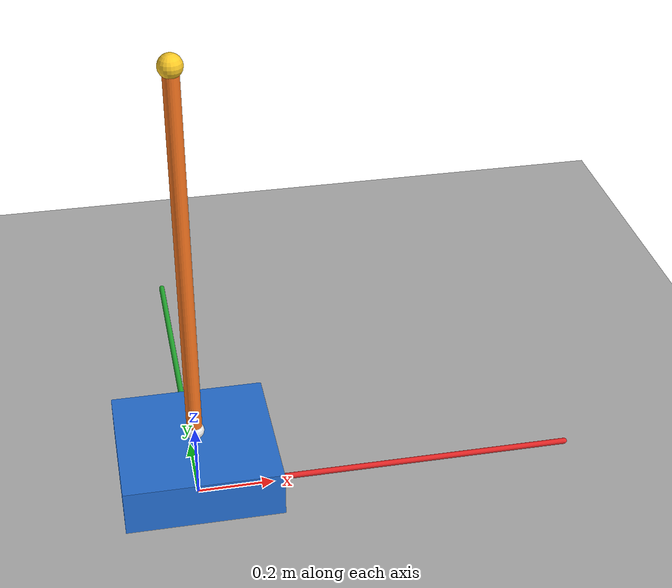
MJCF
<?xml version="1.0" encoding="UTF-8"?>

<!-- mujoco 是 MJCF 根元素；model 是模型名称，方便在查看器中识别。 -->
<mujoco model="xy_cart_two_tilt_pole">
  <!--
    compiler：XML 编译设置。
    angle="radian"：XML 中按此设置解释的角度使用弧度。
    inertiafromgeom="true"：根据各 geom 的形状、尺寸、质量自动计算刚体质心和惯量。
    小车和摆杆都不需要另外手写 inertial。
  -->
  <compiler angle="radian" inertiafromgeom="true"/>

  <option timestep="0.001" gravity="0 0 -9.81" integrator="implicitfast"/>

  <!-- default：同类元素继承的公共设置，可由具体元素覆盖。 -->
  <default>
    <!--
      joint：所有关节的默认参数。
      damping="0"：无粘性阻尼；frictionloss="0"：无干摩擦。
      armature="0"：不增加电机转子等折算到关节上的额外惯量。
    -->
    <joint damping="0" frictionloss="0" armature="0"/>
    <!--
      geom：几何体的公共参数。
      contype="0"、conaffinity="0"：关闭所有接触碰撞，关节约束和重力仍然生效。
      rgba：红、绿、蓝、透明度，均取 0 到 1；最后一项为 1 表示不透明。
    -->
    <geom contype="0" conaffinity="0" rgba="0.7 0.7 0.7 1"/>
  </default>

  <!-- asset：可以供几何体引用的纹理、材质等显示资源，不改变物理参数。 -->
  <asset>
    <!--
      texture：地面棋盘纹理，用于观察小车在两个水平方向的位移。
      name：纹理名称；type="2d"：二维纹理；builtin="checker"：生成棋盘格。
      width、height：生成的纹理宽、高，单位像素。
      rgb1、rgb2：两种棋盘格颜色，每项是红、绿、蓝。
    -->
    <texture name="floor_texture" type="2d" builtin="checker"
             width="512" height="512" rgb1="0.86 0.88 0.9" rgb2="0.65 0.69 0.73"/>
    <!--
      material：给地面使用的材质。
      name：材质名称；texture：引用上面的纹理。
      texrepeat="4 4"：纹理在两个纹理坐标方向各重复 4 次。
      texuniform="true"：使用按空间尺寸统一缩放的纹理映射。
    -->
    <material name="floor_material" texture="floor_texture"
              texrepeat="4 4" texuniform="true"/>
  </asset>

  <!--
    statistic：提供默认观察中心和显示尺度，不改变动力学。
    center="0 0 0.6"：默认观察中心；extent="3"：显示的参考尺度，单位 m。
  -->
  <statistic center="0 0 0.6" extent="3"/>

  <!-- worldbody：世界坐标系；直接包含的几何体和相机固定在世界中。 -->
  <worldbody>
    <!--
      light：灯光，仅影响显示。
      name：灯光名称；pos：世界位置；dir：光线传播方向。
      directional="true"：方向光，光线相互平行。
    -->
    <light name="main_light" pos="1 -3 4" dir="-1 3 -4" directional="true"/>

    <camera name="overview" pos="3 -4 2.5"
            xyaxes="0.8 0.6 0 -0.228 0.304 1" fovy="45"/>
    <!--
      name="front"：正面相机；pos 位于 -Y 一侧。
      xyaxes：画面向右为世界 +X，向上为 +Z；fovy 为竖直视场角。
    -->
    <camera name="front" pos="0 -4 0.65" xyaxes="1 0 0 0 0 1" fovy="45"/>
    <!--
      name="side"：侧面相机；pos 位于 +X 一侧。
      xyaxes：画面向右为世界 +Y，向上为 +Z；fovy 为竖直视场角。
    -->
    <camera name="side" pos="4 0 0.65" xyaxes="0 1 0 0 0 1" fovy="45"/>
    <!--
      name="top"：俯视相机；pos 位于 +Z 一侧。
      xyaxes：画面向右为世界 +X，向上为 +Y；fovy 为竖直视场角。
    -->
    <camera name="top" pos="0 0 4" xyaxes="1 0 0 0 1 0" fovy="45"/>

    <!--
      geom：地面几何体；name：名称；type="plane"：平面。
      pos：地面位于世界 z=0；size：可视化 X/Y 半尺寸及网格间距，不是厚度。
      material：引用棋盘材质；碰撞已由 default 关闭。
      地面没有物理边界，小车的 XY 位移不受地面可视化尺寸限制。
    -->
    <geom name="ground" type="plane" pos="0 0 0" size="4 4 0.25"
          material="floor_material"/>
    <!--
      X 轴标记：name 为名称；type="capsule" 为胶囊形状。
      fromto：世界坐标中两个端点，指定标记的位置、长度和方向。
      size="0.008"：标记半径 0.008 m；rgba：红色，表示世界 +X。
      这是固定显示元素，不是导轨，不限制小车运动。
    -->
    <geom name="x_axis_marker" type="capsule" fromto="0 0 0.012 1 0 0.012"
          size="0.008" rgba="0.9 0.15 0.15 1"/>
    <!-- Y 轴标记：属性同上；fromto 沿 +Y；rgba 为绿色。 -->
    <geom name="y_axis_marker" type="capsule" fromto="0 0 0.012 0 1 0.012"
          size="0.008" rgba="0.15 0.7 0.2 1"/>

    <!--
      body：小车刚体；name="cart" 为名称。
      pos：两个平移关节位置为零时，小车坐标系原点位于 (0, 0, 0.12) m。
      以下两个 slide 关节让小车能在 XY 平面内平移。
      小车没有 Z 平移和转动关节，因此高度固定，也不会偏航、俯仰或侧倾。
    -->
    <body name="cart" pos="0 0 0.12">
      <!--
        name="cart_x"：X 方向关节名称，供执行器和传感器引用。
        type="slide"：一个平移自由度；axis="1 0 0"：沿小车局部 +X。
        小车姿态固定，因此局部轴与世界轴一致。
        limited="false"：无行程限制；该关节位置存入 qpos[0]，单位 m。
      -->
      <joint name="cart_x" type="slide" axis="1 0 0" limited="false"/>
      <!--
        name="cart_y"：Y 方向关节名称；type="slide"：一个平移自由度。
        axis="0 1 0"：沿 +Y；limited="false"：无行程限制。
        关节按声明顺序存储，该关节位置是 qpos[1]，单位 m。
        两个 slide 在同一个刚体上，不会额外引入中间滑台的质量。
      -->
      <joint name="cart_y" type="slide" axis="0 1 0" limited="false"/>

      <!--
        小车外形和惯性来源。
        name：名称；type="box"：长方体；size：X/Y/Z 三个半尺寸。
        总尺寸为 0.40 x 0.40 x 0.12 m，未写 pos，默认位于小车原点。
        mass="1.0"：小车自身质量 1 kg，不包含子刚体摆杆。
        rgba：蓝色、不透明。
      -->
      <geom name="cart_geom" type="box" size="0.20 0.20 0.06" mass="1.0"
            rgba="0.15 0.45 0.85 1"/>
      <!--
        site：显示双铰交点的标记，不是有质量的刚体，也不会增加惯量。
        name：名称；type="sphere"：球形；pos：相对小车原点的位置。
        size：球的半径；rgba：浅色、不透明。
        该位置与下面 pole 的原点重合，即两个倾倒关节的共同中心。
      -->
      <site name="pivot_marker" type="sphere" pos="0 0 0.08" size="0.025"
            rgba="0.95 0.95 0.95 1"/>

      <!--
        pole：摆杆刚体，作为 cart 的子刚体随小车一起平移。
        name：刚体名称；pos：相对于小车坐标系，双铰在中心上方 0.08 m。
        初始双铰中心的世界高度为 0.12 + 0.08 = 0.20 m。
      -->
      <body name="pole" pos="0 0 0.08">
        <joint name="pole_tilt_x" type="hinge" pos="0 0 0"
               axis="0 1 0" limited="false"/>
        <joint name="pole_tilt_y" type="hinge" pos="0 0 0"
               axis="-1 0 0" limited="false"/>
        <geom name="pole_geom" type="cylinder" pos="0 0 0.5"
              size="0.02 0.5" mass="0.1" rgba="0.95 0.45 0.12 1"/>
        <!--
          杆顶标记，用于观察杆顶在三维空间中的位置。
          site 不增加质量或惯量；name、type、pos、size、rgba 含义同前。
          pos="0 0 1"：相对摆杆原点的杆顶位置。
        -->
        <site name="pole_tip" type="sphere" pos="0 0 1" size="0.03"
              rgba="1 0.8 0.15 1"/>
      </body>
    </body>
  </worldbody>

  <!-- actuator：小车的两个独立推力输入，没有摆杆驱动或车轮驱动。 -->
  <actuator>
    <motor name="force_x" joint="cart_x" gear="1"
           ctrllimited="true" ctrlrange="-20 20"/>
    <!--
      属性含义同上；name="force_y"，joint="cart_y"。
      第二个执行器对应 data.ctrl[1]=Fy，正值沿 +Y，负值沿 -Y。
      两个分量各自限幅到 [-20, 20] N，并不是对合力大小限幅。
    -->
    <motor name="force_y" joint="cart_y" gear="1"
           ctrllimited="true" ctrlrange="-20 20"/>
  </actuator>

  <sensor>
    <!-- jointpos：cart_x 的位移，sensordata[0]=x，单位 m。 -->
    <jointpos name="cart_position_x" joint="cart_x"/>
    <!-- jointpos：cart_y 的位移，sensordata[1]=y，单位 m。 -->
    <jointpos name="cart_position_y" joint="cart_y"/>
    <!-- jointvel：cart_x 的速度，sensordata[2]=vx，单位 m/s。 -->
    <jointvel name="cart_velocity_x" joint="cart_x"/>
    <!-- jointvel：cart_y 的速度，sensordata[3]=vy，单位 m/s。 -->
    <jointvel name="cart_velocity_y" joint="cart_y"/>
    <jointpos name="pole_angle_x" joint="pole_tilt_x"/>
    <jointpos name="pole_angle_y" joint="pole_tilt_y"/>
    <jointvel name="pole_angle_velocity_x" joint="pole_tilt_x"/>
    <jointvel name="pole_angle_velocity_y" joint="pole_tilt_y"/>
    <framezaxis name="pole_direction" objtype="xbody" objname="pole"/>
    <frameangvel name="pole_world_angular_velocity" objtype="xbody" objname="pole"/>
  </sensor>

  <!--
    keyframe：保存初始状态；不会在加载时自动选择某一关键帧。
    key 的 name 是状态名称；qpos 按 [x, y, alpha, beta] 排列。
    ctrl 按 [Fx, Fy] 排列，单位 N；未写 qvel，恢复时全部速度为零。
    普通加载或 mj_resetData 默认使用 [0, 0, 0, 0]，即精确直立。
  -->
  <keyframe>
    <!-- upright：小车在 XY 原点，摆杆精确直立，两个推力均为零。 -->
    <key name="upright" qpos="0 0 0 0" ctrl="0 0"/>
    <key name="initial_tilt" qpos="-2 -2 0.4363323130 0.4363323130" ctrl="0 0"/>
    <!-- tilt_x：绕 +Y 轴转 5 度，杆向 +X 倾斜；其余参数含义同上。 -->
    <key name="tilt_x" qpos="0 0 0.0872664626 0" ctrl="0 0"/>
    <!-- tilt_y：绕 -X 轴转 5 度，杆向 +Y 倾斜；其余参数含义同上。 -->
    <key name="tilt_y" qpos="0 0 0 0.0872664626" ctrl="0 0"/>
  </keyframe>
</mujoco>
